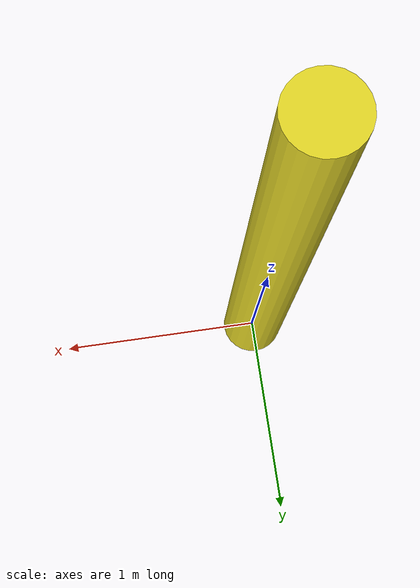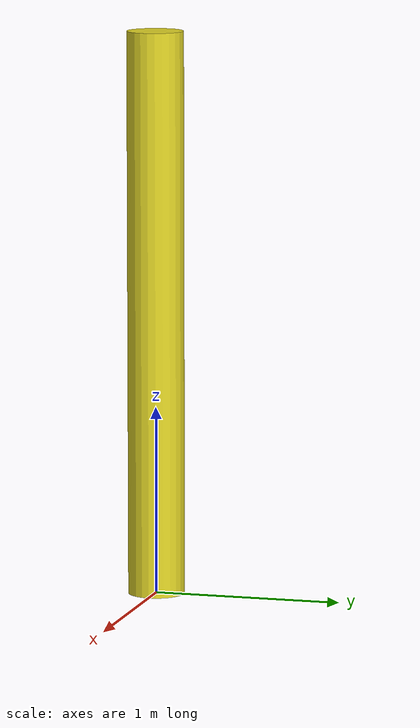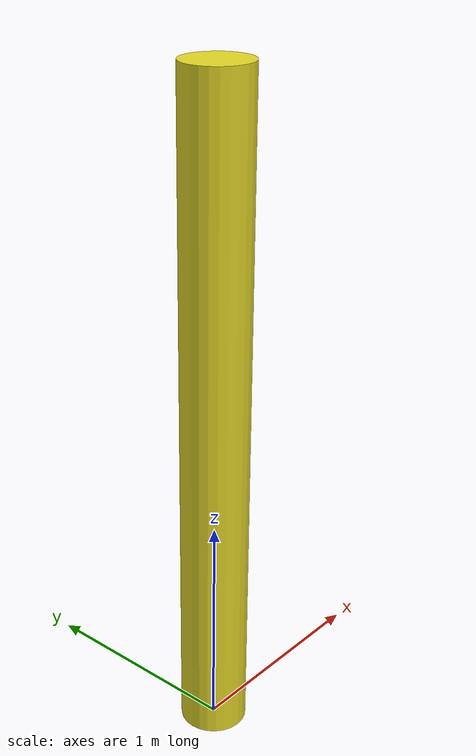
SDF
<?xml version="1.0"?>
<sdf version="1.6">
  <model name="montante_giallo">
    <pose>0 0 1.5 0 0 0</pose>
    <static>0</static>
    <link name="link">
      <inertial>
        <mass>1</mass>
      </inertial>

      <collision name="collision">
        <geometry>
          <cylinder>
              <radius>0.05</radius>
              <length>3</length>
          </cylinder>
        </geometry>
      </collision>

      <visual name="visual">
        <geometry>
          <cylinder>
              <radius>0.15</radius>
              <length>3.0</length>
          </cylinder>
        </geometry>
        <material>
            <script>
              <uri>file://media/materials/scripts/gazebo.material</uri>
              <name>Gazebo/Yellow</name>
            </script>
          </material>
      </visual>

    </link>
  </model>
</sdf>
